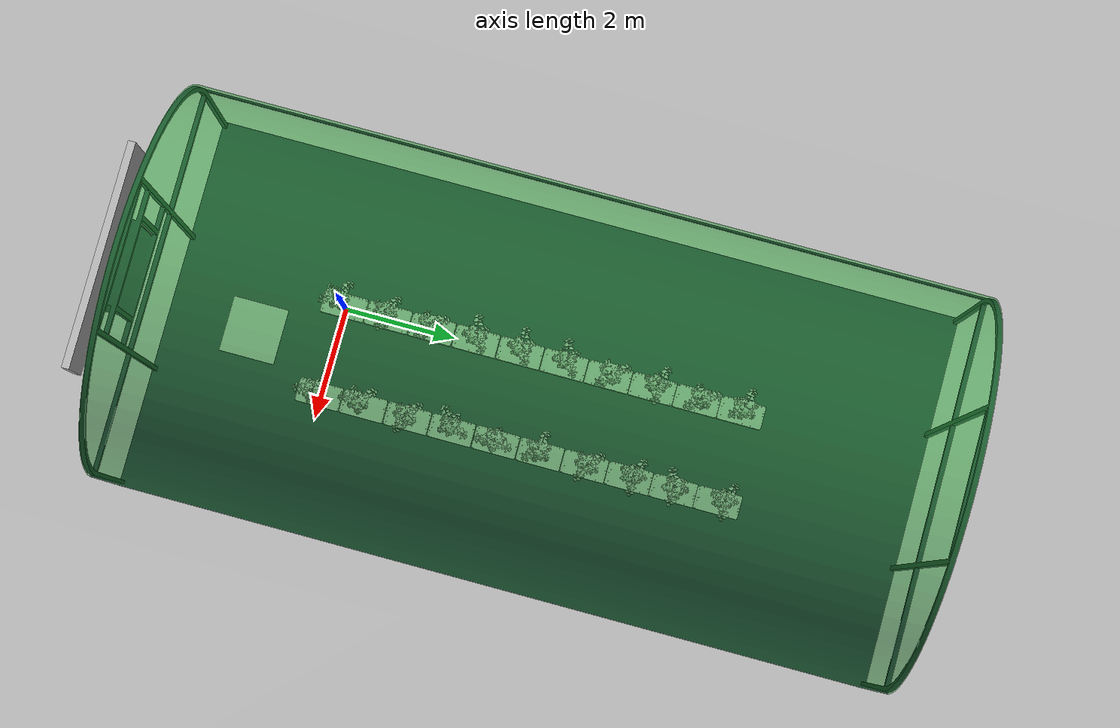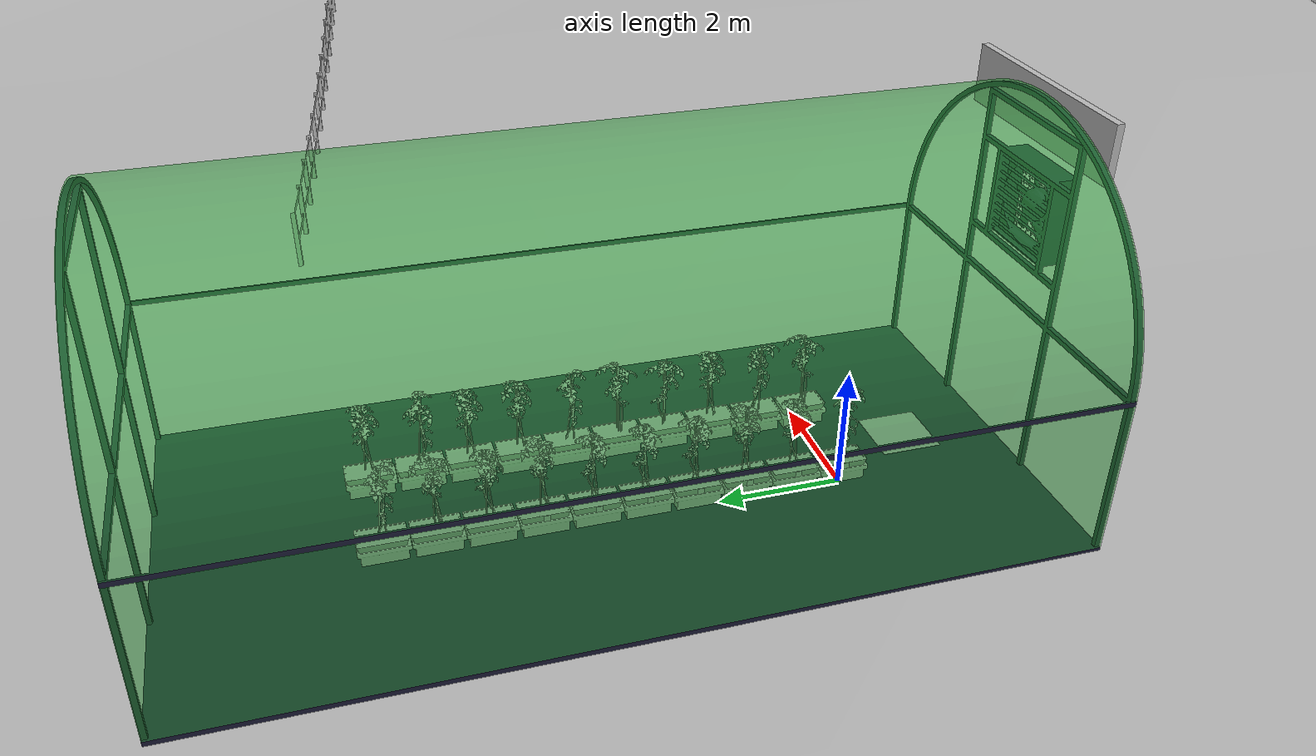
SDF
<sdf version="1.6">
 <world name="default">
  <light name="light0" type="directional">
   <pose>0 -18.818 8 0.75 -0 0</pose>
   <diffuse>0.5 0.5 0.5 1</diffuse>
   <specular>0.1 0.1 0.1 1</specular>
   <direction>0.1 0.1 -0.9</direction>
   <attenuation>
    <range>20</range>
    <constant>0.5</constant>
    <linear>0.01</linear>
    <quadratic>0.001</quadratic>
   </attenuation>
   <cast_shadows>0</cast_shadows>
  </light>
  <light name="light1" type="directional">
   <pose>0 -1.26453 6 0 -0 0</pose>
   <diffuse>0.5 0.5 0.5 1</diffuse>
   <specular>0.1 0.1 0.1 1</specular>
   <direction>0.1 0.1 -0.9</direction>
   <attenuation>
    <range>20</range>
    <constant>0.5</constant>
    <linear>0.01</linear>
    <quadratic>0.001</quadratic>
   </attenuation>
   <cast_shadows>0</cast_shadows>
  </light>
  <light name="light3" type="directional">
   <pose>3.9239 1.64974 4 0 1.2 0</pose>
   <diffuse>0.5 0.5 0.5 1</diffuse>
   <specular>0.1 0.1 0.1 1</specular>
   <direction>0.1 0.1 -0.9</direction>
   <attenuation>
    <range>20</range>
    <constant>0.5</constant>
    <linear>0.01</linear>
    <quadratic>0.001</quadratic>
   </attenuation>
   <cast_shadows>0</cast_shadows>
  </light>
  <light name="light4" type="directional">
   <pose>-2.5 4.649 4 0 -0.95 0</pose>
   <diffuse>0.5 0.5 0.5 1</diffuse>
   <specular>0.1 0.1 0.1 1</specular>
   <direction>0.1 0.1 -0.9</direction>
   <attenuation>
    <range>20</range>
    <constant>0.5</constant>
    <linear>0.01</linear>
    <quadratic>0.001</quadratic>
   </attenuation>
   <cast_shadows>0</cast_shadows>
  </light>
  <light name="light5" type="directional">
   <pose>0.454419 12.4783 5 -0.8 0 0</pose>
   <diffuse>0.5 0.5 0.5 1</diffuse>
   <specular>0.1 0.1 0.1 1</specular>
   <direction>0.1 0.1 -0.9</direction>
   <attenuation>
    <range>20</range>
    <constant>0.5</constant>
    <linear>0.01</linear>
    <quadratic>0.001</quadratic>
   </attenuation>
   <cast_shadows>0</cast_shadows>
  </light>
  <scene><shadows>false</shadows><grid>false</grid><sky><clouds><speed>4</speed></clouds></sky></scene>
  <include><uri>model://farm1</uri><pose>1.424045 -8.25 0.15 -0.02 0.029 0</pose></include>
  <include><uri>model://green_house</uri><pose>10.523 -2.987 0.1 1.57159 -0.001593 -3.14159</pose></include>
  <include>
   <uri>model://tomato_plant_2</uri>
   <name>plant00</name>
   <pose>0 0 0.49 0 0 5.34188268943</pose>
  </include>
  <include><uri>model://trough</uri><name>trough00</name><pose>0 0 0.09 1.57 0 1.57</pose></include>
  <include>
   <uri>model://tomato_plant_2</uri>
   <name>plant01</name>
   <pose>0 0.8 0.49 0 0 2.6135652518</pose>
  </include>
  <include><uri>model://trough</uri><name>trough01</name><pose>0 0.8 0.09 1.57 0 1.57</pose></include>
  <include>
   <uri>model://tomato_plant_2</uri>
   <name>plant02</name>
   <pose>0 1.6 0.49 0 0 2.12446453074</pose>
  </include>
  <include><uri>model://trough</uri><name>trough02</name><pose>0 1.6 0.09 1.57 0 1.57</pose></include>
  <include>
   <uri>model://tomato_plant_2</uri>
   <name>plant03</name>
   <pose>0 2.4 0.49 0 0 3.33601631712</pose>
  </include>
  <include><uri>model://trough</uri><name>trough03</name><pose>0 2.4 0.09 1.57 0 1.57</pose></include>
  <include><uri>model://tomato_plant_t3</uri><name>plant04</name><pose>0 3.2 0.49 0 0 -3.08</pose></include>
  <include><uri>model://trough</uri><name>trough04</name><pose>0 3.2 0.09 1.57 0 1.57</pose></include>
  <include>
   <uri>model://tomato_plant_3</uri>
   <name>plant05</name>
   <pose>0 4.0 0.49 0 0 3.38380320291</pose>
  </include>
  <include><uri>model://trough</uri><name>trough05</name><pose>0 4.0 0.09 1.57 0 1.57</pose></include>
  <include>
   <uri>model://tomato_plant_2</uri>
   <name>plant06</name>
   <pose>0 4.8 0.49 0 0 2.13792364415</pose>
  </include>
  <include><uri>model://trough</uri><name>trough06</name><pose>0 4.8 0.09 1.57 0 1.57</pose></include>
  <include>
   <uri>model://tomato_plant_3</uri>
   <name>plant07</name>
   <pose>0 5.6 0.49 0 0 2.85999831361</pose>
  </include>
  <include><uri>model://trough</uri><name>trough07</name><pose>0 5.6 0.09 1.57 0 1.57</pose></include>
  <include>
   <uri>model://tomato_plant_t4</uri>
   <name>plant08</name>
   <pose>0 6.4 0.49 0 0 1.96971919901</pose>
  </include>
  <include><uri>model://trough</uri><name>trough08</name><pose>0 6.4 0.09 1.57 0 1.57</pose></include>
  <include>
   <uri>model://tomato_plant_2</uri>
   <name>plant09</name>
   <pose>0 7.2 0.49 0 0 5.64805043451</pose>
  </include>
  <include><uri>model://trough</uri><name>trough09</name><pose>0 7.2 0.09 1.57 0 1.57</pose></include>
  <include>
   <uri>model://tomato_plant_2</uri>
   <name>plant10</name>
   <pose>1.62 0 0.49 0 0 1.25317275085</pose>
  </include>
  <include><uri>model://trough</uri><name>trough10</name><pose>1.62 0 0.09 1.57 0 1.57</pose></include>
  <include>
   <uri>model://tomato_plant_2</uri>
   <name>plant11</name>
   <pose>1.62 0.8 0.49 0 0 4.98673370775</pose>
  </include>
  <include><uri>model://trough</uri><name>trough11</name><pose>1.62 0.8 0.09 1.57 0 1.57</pose></include>
  <include>
   <uri>model://tomato_plant_3</uri>
   <name>plant12</name>
   <pose>1.62 1.6 0.49 0 0 2.4420932141</pose>
  </include>
  <include><uri>model://trough</uri><name>trough12</name><pose>1.62 1.6 0.09 1.57 0 1.57</pose></include>
  <include>
   <uri>model://tomato_plant_3</uri>
   <name>plant13</name>
   <pose>1.62 2.4 0.49 0 0 3.88825472158</pose>
  </include>
  <include><uri>model://trough</uri><name>trough13</name><pose>1.62 2.4 0.09 1.57 0 1.57</pose></include>
  <include>
   <uri>model://tomato_plant_2</uri>
   <name>plant14</name>
   <pose>1.62 3.2 0.49 0 0 1.365446238</pose>
  </include>
  <include><uri>model://trough</uri><name>trough14</name><pose>1.62 3.2 0.09 1.57 0 1.57</pose></include>
  <include><uri>model://task_3_2</uri><name>plant15</name><pose>1.62 4.0 0.49 0 0 5.6655745628</pose></include>
  <include><uri>model://trough</uri><name>trough15</name><pose>1.62 4.0 0.09 1.57 0 1.57</pose></include>
  <include>
   <uri>model://tomato_plant_2</uri>
   <name>plant16</name>
   <pose>1.62 4.8 0.49 0 0 2.37386384298</pose>
  </include>
  <include><uri>model://trough</uri><name>trough16</name><pose>1.62 4.8 0.09 1.57 0 1.57</pose></include>
  <include>
   <uri>model://tomato_plant_3</uri>
   <name>plant17</name>
   <pose>1.62 5.6 0.49 0 0 2.80530582763</pose>
  </include>
  <include><uri>model://trough</uri><name>trough17</name><pose>1.62 5.6 0.09 1.57 0 1.57</pose></include>
  <include>
   <uri>model://tomato_plant_2</uri>
   <name>plant18</name>
   <pose>1.62 6.4 0.49 0 0 0.00211446291264</pose>
  </include>
  <include><uri>model://trough</uri><name>trough18</name><pose>1.62 6.4 0.09 1.57 0 1.57</pose></include>
  <include>
   <uri>model://tomato_plant_3</uri>
   <name>plant19</name>
   <pose>1.62 7.2 0.49 0 0 2.85007383</pose>
  </include>
  <include><uri>model://trough</uri><name>trough19</name><pose>1.62 7.2 0.09 1.57 0 1.57</pose></include>
  <include><uri>model://Aruco_00</uri><name>Aruco_l00</name><pose>-0.21 0 0.45 0 0 1.57</pose></include>
  <include><uri>model://Aruco_01</uri><name>Aruco_l01</name><pose>-0.21 0.8 0.45 0 0 1.57</pose></include>
  <include><uri>model://Aruco_02</uri><name>Aruco_l02</name><pose>-0.21 1.6 0.45 0 0 1.57</pose></include>
  <include>
   <uri>model://Aruco_03</uri>
   <name>Aruco_l03</name>
   <pose>-0.21 2.4000000000000004 0.45 0 0 1.57</pose>
  </include>
  <include><uri>model://Aruco_04</uri><name>Aruco_l04</name><pose>-0.21 3.2 0.45 0 0 1.57</pose></include>
  <include><uri>model://Aruco_05</uri><name>Aruco_l05</name><pose>-0.21 4.0 0.45 0 0 1.57</pose></include>
  <include><uri>model://Aruco_06</uri><name>Aruco_l06</name><pose>-0.21 4.8 0.45 0 0 1.57</pose></include>
  <include><uri>model://Aruco_00</uri><name>Aruco_r00</name><pose>0.21 0 0.45 0 0 -1.57</pose></include>
  <include><uri>model://Aruco_01</uri><name>Aruco_r01</name><pose>0.21 0.8 0.45 0 0 -1.57</pose></include>
  <include><uri>model://Aruco_02</uri><name>Aruco_r02</name><pose>0.21 1.6 0.45 0 0 -1.57</pose></include>
  <include>
   <uri>model://Aruco_03</uri>
   <name>Aruco_r03</name>
   <pose>0.21 2.4000000000000004 0.45 0 0 -1.57</pose>
  </include>
  <include><uri>model://Aruco_04</uri><name>Aruco_r04</name><pose>0.21 3.2 0.45 0 0 -1.57</pose></include>
  <include><uri>model://Aruco_05</uri><name>Aruco_r05</name><pose>0.21 4.0 0.45 0 0 -1.57</pose></include>
  <include><uri>model://Aruco_06</uri><name>Aruco_r06</name><pose>0.21 4.8 0.45 0 0 -1.57</pose></include>
  <include><uri>model://start_zone</uri><name>start_zone</name><pose>0.8 -1.45 -0.02 0 0 0</pose></include>
 </world>
</sdf>

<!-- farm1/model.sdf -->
<sdf version="1.6">
  <model name="farm">
    <static>true</static>
    <link name="link">
      <collision name="colision1">
        <pose>0 0 0 0 0 0 </pose>
          <geometry>
            <box><size>2.32 1 1</size></box>
          </geometry>

      </collision>

      <visual name="visual1">
        <cast_shadows>false</cast_shadows>
	<pose> 0 0 0 0 0 0</pose>
        <geometry>
          <mesh>
            <uri>model://farm1/meshes/agriculture_world.dae</uri>

          </mesh>
        </geometry>
      </visual>

    </link>
  </model>
</sdf>

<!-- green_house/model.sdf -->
<sdf version="1.6">
  <model name="green_house">
    <static>true</static>

    <link name="link">
      <collision name="collision">
        <geometry>
          <mesh>
             <scale>0.001 0.001 0.001</scale>
            <uri>file://green_house/meshes/greenhouse_eyantra_glass.stl</uri>
          </mesh>
        </geometry>
      </collision>
      <visual name="branch">
        <geometry>
          <mesh>
                <scale>0.001 0.001 0.001</scale>
            <uri>file://green_house/meshes/greenhouse_eyantra_glass.stl</uri>

          </mesh>
        </geometry>

<material>
  <script>
    <name>Gazebo/GreenTransparent</name>
    <uri>file://media/materials/scripts/gazebo.material</uri>
  </script>
</material>

      </visual>
    </link>

    <link name="link2">
      <collision name="collision2">
        <geometry>
          <mesh>
             <scale>0.001 0.001 0.001</scale>
            <uri>file://green_house/meshes/greenhouse_eyantra_skeleton.stl</uri>
          </mesh>
        </geometry>
      </collision>
      <visual name="branch2">
        <geometry>
          <mesh>
                <scale>0.001 0.001 0.001</scale>
            <uri>file://green_house/meshes/greenhouse_eyantra_skeleton.stl</uri>

          </mesh>
        </geometry>

      <material>
          <ambient>0.1 0.1 0.1 1</ambient>
          <diffuse>0.1 0.1 0.2 1</diffuse>
          <specular>0 0 0 0</specular>
          <emissive>0 0 0 1</emissive>
        </material>

      </visual>
    </link>

    <link name="link3">
 <pose>9.7 5.5 -0.2 0 3.14 0</pose>
      <collision name="logo">
        <geometry>
          <mesh>
       <scale>400 400 400</scale>
            <uri>file://green_house/meshes/logo2.dae</uri>
          </mesh>
        </geometry>
      </collision>
      <visual name="logo_c">
        <geometry>
          <mesh>
  <scale>400 400 400</scale>
            <uri>file://green_house/meshes/logo2.dae</uri>

          </mesh>
        </geometry>

      </visual>
    </link>

        <joint name="logo" type="fixed">
            <pose>0 0 0 0 0 0</pose>
            <child>link3</child>
            <parent>link2</parent>

        </joint>

  </model>
</sdf>

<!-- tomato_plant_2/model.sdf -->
<sdf version="1.6">
    <model name="tomato_plant_2">
	<static>true</static>
      <link name="tomato_plant_link">

        <inertial>
          <pose>0 0 0 0 0 0</pose>
          <mass>20</mass>
          <inertia>
            <ixx>0.2006</ixx>
            <ixy>0</ixy>
            <ixz>0</ixz>
            <iyy>0.2006</iyy>
            <iyz>0</iyz>
            <izz>0.4</izz>
          </inertia>
        </inertial>

        <visual name="visual">
          <pose>0 0 0 0 0 0</pose>
          <geometry>
            <mesh><uri>model://tomato_plant_2/meshes/tomato_plant_2.obj</uri></mesh>
          </geometry>
        </visual>

        <collision name="collision">
          <pose>0 0 0.01 0 0 0</pose>
       <geometry>
          <cylinder>
            <radius>0.2</radius>
            <length>0.02</length>
          </cylinder>
        </geometry>
        </collision>
      </link>

    </model>
</sdf>

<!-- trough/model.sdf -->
<sdf version="1.6">
    <model name="trough">
	   <static>true</static>
      <link name="trough_link">

        <visual name="visual">
          <geometry>
            <mesh><uri>model://trough/meshes/truf_brick.obj</uri></mesh>
          </geometry>
        </visual>

        <collision name="collision">
          <pose>0 0.3 0 0 0 0</pose>
          <geometry>
          <box>
            <size>0.75 0.2 0.42</size>
          </box>
           </geometry>
        </collision>
      </link>

    </model>
</sdf>

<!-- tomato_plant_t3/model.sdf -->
<sdf version="1.6">
    <model name="tomato_plant_t3">
	<static>false</static>
      <link name="tomato_plant_link">

        <inertial>
          <pose>0 0 0 0 0 0</pose>
          <mass>20</mass>
          <inertia>
            <ixx>0.2006</ixx>
            <ixy>0</ixy>
            <ixz>0</ixz>
            <iyy>0.2006</iyy>
            <iyz>0</iyz>
            <izz>0.4</izz>
          </inertia>
        </inertial>

        <visual name="visual">
          <pose>0 0 0 0 0 0</pose>
          <geometry>
            <mesh><uri>model://tomato_plant/meshes/tomato_plant.obj</uri></mesh>
          </geometry>
        </visual>
        <collision name="collision">
          <pose>0 0 0.01 0 0 0</pose>
       <geometry>
          <cylinder>
            <radius>0.2</radius>
            <length>0.02</length>
          </cylinder>
        </geometry>
        </collision>
      </link>

<!-- tomatoes -->

      <link name="t_link_0">
        <pose>0.176111 0.046061 0.713729 0 0 0</pose>
        <inertial>
          <mass>0.001</mass>
          <inertia>
            <ixx>3.6e-03</ixx>
            <ixy>0</ixy>
            <ixz>0</ixz>
            <iyy>3.6e-03</iyy>
            <iyz>0</iyz>
            <izz>3.6e-03</izz>
          </inertia>
        </inertial>

      <surface>
        <friction>
          <ode>
            <mu>100000</mu>
            <mu2>100000</mu2>
          </ode>
        </friction>
      </surface>
        <collision name="collision">
          <geometry>
            <sphere><radius>0.02</radius></sphere>
          </geometry>
        </collision>
        <visual name="visual">
          <geometry>
            <mesh><uri>model://red_tomato/meshes/red_tomato.obj</uri></mesh>
          </geometry>
        </visual>
      </link>
      <joint name="t_joint_0" type="fixed">
        <parent>tomato_plant_link</parent>
        <child>t_link_0</child>
        <axis>
          <xyz>0 0 1</xyz>
          <use_parent_model_frame>true</use_parent_model_frame>
        </axis>
        <sensor name="force_torque" type="force_torque">
          <always_on>true</always_on>
          <update_rate>100</update_rate>
          <plugin name="breakable_0" filename="libBreakableJointPlugin.so">
            <breaking_force_N>10</breaking_force_N>
          </plugin>
        </sensor>
      </joint>

    </model>
</sdf>

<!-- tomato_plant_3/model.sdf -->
<sdf version="1.6">
    <model name="tomato_plant_3">
  <static>true</static>
      <link name="tomato_plant_link">

        <inertial>
          <pose>0 0 0 0 0 0</pose>
          <mass>20</mass>
          <inertia>
            <ixx>0.2006</ixx>
            <ixy>0</ixy>
            <ixz>0</ixz>
            <iyy>0.2006</iyy>
            <iyz>0</iyz>
            <izz>0.4</izz>
          </inertia>
        </inertial>

        <visual name="visual">
          <pose>0 0 0 0 0 0</pose>
          <geometry>
            <mesh><uri>model://tomato_plant_3/meshes/tomato_plant_3.obj</uri></mesh>
          </geometry>
        </visual>

        <collision name="collision">
          <pose>0 0 0.01 0 0 0</pose>
       <geometry>
          <cylinder>
            <radius>0.2</radius>
            <length>0.02</length>
          </cylinder>
        </geometry>
        </collision>
      </link>

    </model>
</sdf>

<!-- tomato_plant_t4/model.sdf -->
<sdf version="1.6">
    <model name="tomato_plant_t4">
  <static>false</static>
      <link name="tomato_plant_link">

        <inertial>
          <pose>0 0 0 0 0 0</pose>
          <mass>20</mass>
          <inertia>
            <ixx>0.2006</ixx>
            <ixy>0</ixy>
            <ixz>0</ixz>
            <iyy>0.2006</iyy>
            <iyz>0</iyz>
            <izz>0.4</izz>
          </inertia>
        </inertial>

        <visual name="visual">
          <pose>0 0 0 0 0 0</pose>
          <geometry>
            <mesh><uri>model://tomato_plant/meshes/tomato_plant.obj</uri></mesh>
          </geometry>
        </visual>
        <collision name="collision">
          <pose>0 0 0.01 0 0 0</pose>
       <geometry>
          <cylinder>
            <radius>0.2</radius>
            <length>0.02</length>
          </cylinder>
        </geometry>
        </collision>
      </link>

<!-- tomatoes -->

      <link name="t_link_2">
        <pose>0.062027 -0.170581 0.614534 0 0 0</pose>
        <inertial>
          <mass>0.001</mass>
          <inertia>
            <ixx>3.6e-03</ixx>
            <ixy>0</ixy>
            <ixz>0</ixz>
            <iyy>3.6e-03</iyy>
            <iyz>0</iyz>
            <izz>3.6e-03</izz>
          </inertia>
        </inertial>

      <surface>
        <friction>
          <ode>
            <mu>100000</mu>
            <mu2>100000</mu2>
          </ode>
        </friction>
      </surface>
        <collision name="collision">
          <geometry>
            <sphere><radius>0.02</radius></sphere>
          </geometry>
        </collision>
        <visual name="visual">
          <geometry>
            <mesh><uri>model://red_tomato/meshes/red_tomato.obj</uri></mesh>
          </geometry>
        </visual>
      </link>
      <joint name="t_joint_2" type="fixed">
        <parent>tomato_plant_link</parent>
        <child>t_link_2</child>
        <axis>
          <xyz>0 0 1</xyz>
          <use_parent_model_frame>true</use_parent_model_frame>
        </axis>
        <sensor name="force_torque" type="force_torque">
          <always_on>true</always_on>
          <update_rate>100</update_rate>
          <plugin name="breakable_2" filename="libBreakableJointPlugin.so">
            <breaking_force_N>10</breaking_force_N>
          </plugin>
        </sensor>
      </joint>

    </model>
</sdf>

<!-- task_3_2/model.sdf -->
<sdf version="1.6">
    <model name="task_2">
  <static>false</static>
      <link name="tomato_plant_link">

        <inertial>
          <pose>0 0 0 0 0 0</pose>
          <mass>20</mass>
          <inertia>
            <ixx>0.2006</ixx>
            <ixy>0</ixy>
            <ixz>0</ixz>
            <iyy>0.2006</iyy>
            <iyz>0</iyz>
            <izz>0.4</izz>
          </inertia>
        </inertial>

        <visual name="visual">
          <pose>0 0 0 0 0 0</pose>
          <geometry>
            <mesh><uri>model://tomato_plant/meshes/tomato_plant.obj</uri></mesh>
          </geometry>
        </visual>
        <collision name="collision">
          <pose>0 0 0.01 0 0 0</pose>
       <geometry>
          <cylinder>
            <radius>0.2</radius>
            <length>0.02</length>
          </cylinder>
        </geometry>
        </collision>
      </link>

<!-- tomato link -->

      <link name="t_link_2">
        <pose>0.062027 -0.170581 0.614534 0 0 0</pose>
        <inertial>
          <mass>0.001</mass>
          <inertia>
            <ixx>3.6e-03</ixx>
            <ixy>0</ixy>
            <ixz>0</ixz>
            <iyy>3.6e-03</iyy>
            <iyz>0</iyz>
            <izz>3.6e-03</izz>
          </inertia>
        </inertial>

      <surface>
        <friction>
          <ode>
            <mu>100000</mu>
            <mu2>100000</mu2>
          </ode>
        </friction>
      </surface>

        <collision name="collision">
          <geometry>
            <sphere><radius>0.02</radius></sphere>
          </geometry>
        </collision>
        <visual name="visual">
          <geometry>
            <mesh><uri>model://red_tomato/meshes/red_tomato.obj</uri></mesh>
          </geometry>
        </visual>
      </link>
      <joint name="t_joint_2" type="fixed">
        <parent>tomato_plant_link</parent>
        <child>t_link_2</child>
        <axis>
          <xyz>0 0 1</xyz>
          <use_parent_model_frame>true</use_parent_model_frame>
        </axis>
        <sensor name="force_torque" type="force_torque">
          <always_on>true</always_on>
          <update_rate>100</update_rate>
          <plugin name="breakable_2" filename="libBreakableJointPlugin.so">
            <breaking_force_N>10</breaking_force_N>
          </plugin>
        </sensor>
      </joint>

      <link name="t_link_9">
        <pose>-0.27 -0.146 0.885 0 0 0</pose>
        <inertial>
          <mass>0.001</mass>
          <inertia>
            <ixx>3.6e-03</ixx>
            <ixy>0</ixy>
            <ixz>0</ixz>
            <iyy>3.6e-03</iyy>
            <iyz>0</iyz>
            <izz>3.6e-03</izz>
          </inertia>
        </inertial>

      <surface>
        <friction>
          <ode>
            <mu>100000</mu>
            <mu2>100000</mu2>
          </ode>
        </friction>
      </surface>
        <collision name="collision">
          <geometry>
            <sphere><radius>0.02</radius></sphere>
          </geometry>
        </collision>
        <visual name="visual">
          <geometry>
            <mesh><uri>model://red_tomato/meshes/red_tomato.obj</uri></mesh>
          </geometry>
        </visual>
      </link>
      <joint name="t_joint_9" type="fixed">
        <parent>tomato_plant_link</parent>
        <child>t_link_9</child>
        <axis>
          <xyz>0 0 1</xyz>
          <use_parent_model_frame>true</use_parent_model_frame>
        </axis>
        <sensor name="force_torque" type="force_torque">
          <always_on>true</always_on>
          <update_rate>100</update_rate>
          <plugin name="breakable_9" filename="libBreakableJointPlugin.so">
            <breaking_force_N>10</breaking_force_N>
          </plugin>
        </sensor>
      </joint>
    </model>
</sdf>

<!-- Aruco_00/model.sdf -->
<sdf version="1.6">
  <model name="aruco">
    <static>true</static>
    <link name="link">

      <visual name="visual1">
        <cast_shadows>false</cast_shadows>
	      <pose> 0 0 0 0 0 0</pose>
        <geometry>
          <mesh>
            <uri>model://Aruco_00/meshes/aruco0.obj</uri>
	               <scale>0.05 0.05 0.05</scale>
          </mesh>
        </geometry>
      </visual>

    </link>
  </model>
</sdf>

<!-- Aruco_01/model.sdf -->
<sdf version="1.6">
  <model name="Aruco_01">
    <static>true</static>
    <link name="link">

      <visual name="visual1">
        <cast_shadows>false</cast_shadows>
	      <pose> 0 0 0 0 0 0</pose>
        <geometry>
          <mesh>
            <uri>model://Aruco_01/meshes/aruco0.obj</uri>
	               <scale>0.05 0.05 0.05</scale>
          </mesh>
        </geometry>
      </visual>

    </link>
  </model>
</sdf>

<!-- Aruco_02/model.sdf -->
<sdf version="1.6">
  <model name="aruco">
    <static>true</static>
    <link name="link">

      <visual name="visual1">
        <cast_shadows>false</cast_shadows>
	      <pose> 0 0 0 0 0 0</pose>
        <geometry>
          <mesh>
            <uri>model://Aruco_02/meshes/aruco0.obj</uri>
	               <scale>0.05 0.05 0.05</scale>
          </mesh>
        </geometry>
      </visual>

    </link>
  </model>
</sdf>

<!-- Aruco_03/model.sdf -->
<sdf version="1.6">
  <model name="aruco">
    <static>true</static>
    <link name="link">

      <visual name="visual1">
        <cast_shadows>false</cast_shadows>
	      <pose> 0 0 0 0 0 0</pose>
        <geometry>
          <mesh>
            <uri>model://Aruco_03/meshes/aruco0.obj</uri>
	               <scale>0.05 0.05 0.05</scale>
          </mesh>
        </geometry>
      </visual>

    </link>
  </model>
</sdf>

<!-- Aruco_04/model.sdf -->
<sdf version="1.6">
  <model name="aruco">
    <static>true</static>
    <link name="link">

      <visual name="visual1">
        <cast_shadows>false</cast_shadows>
	      <pose> 0 0 0 0 0 0</pose>
        <geometry>
          <mesh>
            <uri>model://Aruco_04/meshes/aruco0.obj</uri>
	               <scale>0.05 0.05 0.05</scale>
          </mesh>
        </geometry>
      </visual>

    </link>
  </model>
</sdf>

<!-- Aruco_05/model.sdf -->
<sdf version="1.6">
  <model name="aruco">
    <static>true</static>
    <link name="link">

      <visual name="visual1">
        <cast_shadows>false</cast_shadows>
	      <pose> 0 0 0 0 0 0</pose>
        <geometry>
          <mesh>
            <uri>model://Aruco_05/meshes/aruco0.obj</uri>
	               <scale>0.05 0.05 0.05</scale>
          </mesh>
        </geometry>
      </visual>

    </link>
  </model>
</sdf>

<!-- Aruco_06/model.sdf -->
<sdf version="1.6">
  <model name="aruco">
    <static>true</static>
    <link name="link">

      <visual name="visual1">
        <cast_shadows>false</cast_shadows>
	      <pose> 0 0 0 0 0 0</pose>
        <geometry>
          <mesh>
            <uri>model://Aruco_06/meshes/aruco0.obj</uri>
	               <scale>0.05 0.05 0.05</scale>
          </mesh>
        </geometry>
      </visual>

    </link>
  </model>
</sdf>

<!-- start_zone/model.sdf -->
<sdf version="1.6">
  <model name="aruco">
    <static>true</static>
    <link name="link">

      <visual name="visual1">
        <cast_shadows>false</cast_shadows>
        <pose> 0 0 0.1 1.57 0 0</pose>
        <geometry>
          <mesh>
            <uri>model://start_zone/meshes/start_zone.obj</uri>
            <scale>0.5 0.5 0.5</scale>

          </mesh>
        </geometry>
      </visual>

    </link>
  </model>
</sdf>
